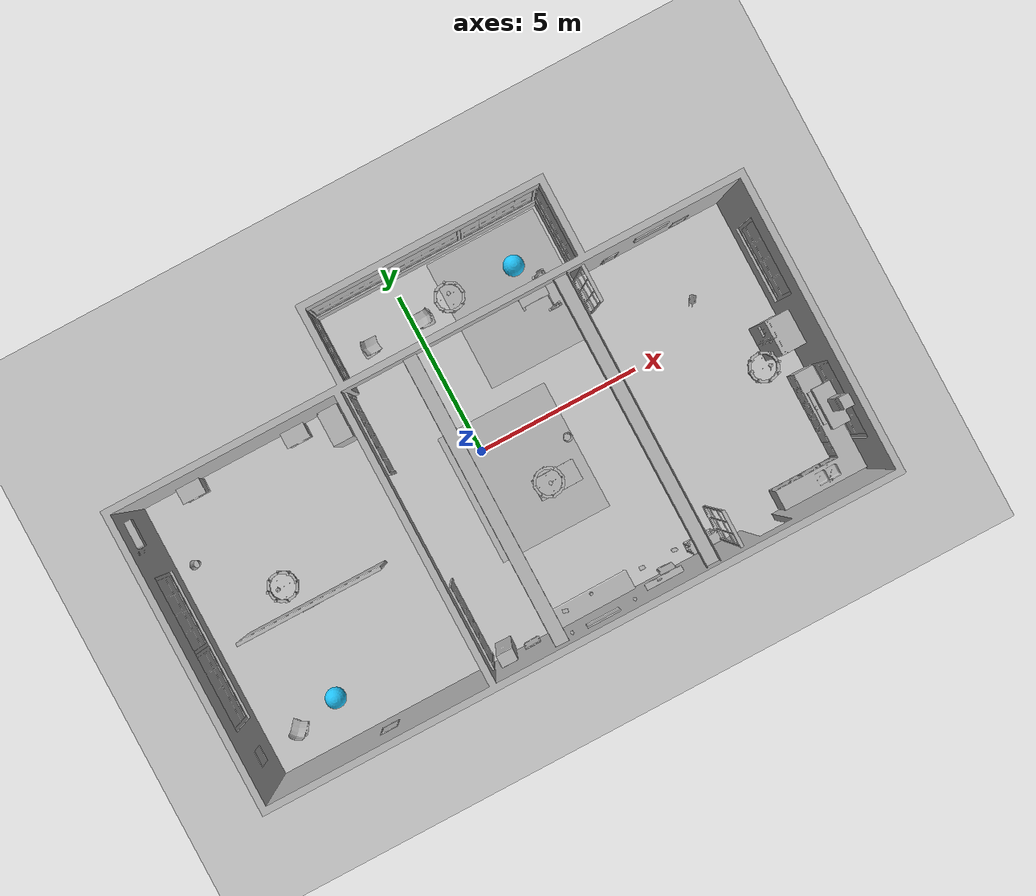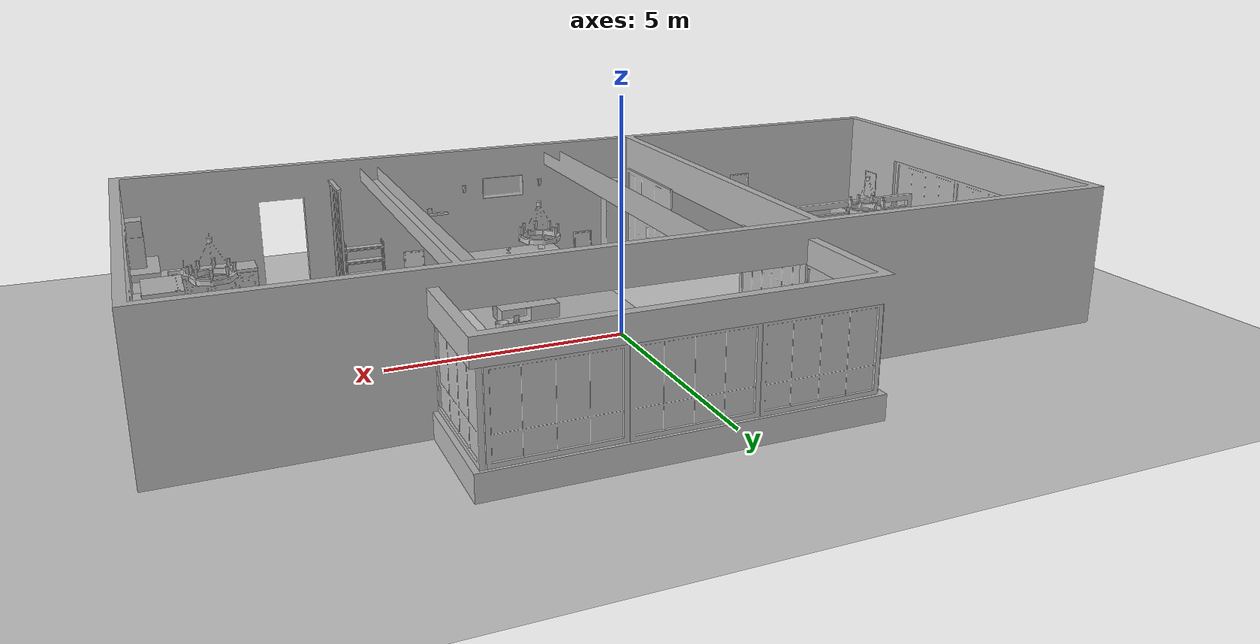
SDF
<sdf version="1.6">
 <world name="default">
  <gravity>0 0 -9.8</gravity>
  <magnetic_field>6e-06 2.3e-05 -4.2e-05</magnetic_field>
  <atmosphere type="adiabatic"/>
  <physics name="default_physics" default="0" type="ode">
   <max_step_size>0.001</max_step_size>
   <real_time_factor>1</real_time_factor>
   <real_time_update_rate>1000</real_time_update_rate>
  </physics>
  <scene>
   <ambient>0.4 0.4 0.4 1</ambient>
   <background>0.7 0.7 0.7 1</background>
   <shadows>false</shadows>
   <grid>0</grid>
   <origin_visual>0</origin_visual>
  </scene>
  <spherical_coordinates>
   <surface_model>EARTH_WGS84</surface_model>
   <latitude_deg>0</latitude_deg>
   <longitude_deg>0</longitude_deg>
   <elevation>0</elevation>
   <heading_deg>0</heading_deg>
  </spherical_coordinates>
  <model name="AirconditionerA_01_001">
   <link name="aws_robomaker_residential_AirconditionerA_01::link">
    <inertial><mass>1</mass></inertial>
    <collision name="collision">
     <geometry>
      <mesh>
       <uri>file://models/aws_robomaker_residential_AirconditionerA_01/meshes/aws_AirconditionerA_01_collision.DAE</uri>
       <scale>1 1 1</scale>
      </mesh>
     </geometry>
    </collision>
    <visual name="visual">
     <geometry>
      <mesh>
       <uri>file://models/aws_robomaker_residential_AirconditionerA_01/meshes/aws_AirconditionerA_01_visual.DAE</uri>
      </mesh>
     </geometry>
     <meta><layer>1</layer></meta>
    </visual>
   </link>
   <static>1</static>
   <pose>-9.19941 2.41123 2.08454 0 -0 0</pose>
  </model>
  <model name="AirconditionerB_01_001">
   <link name="aws_robomaker_residential_AirconditionerB_01::link">
    <inertial>
     <mass>1</mass>
     <inertia><ixx>1</ixx><ixy>0</ixy><ixz>0</ixz><iyy>1</iyy><iyz>0</iyz><izz>1</izz></inertia>
    </inertial>
    <collision name="collision">
     <geometry>
      <mesh>
       <uri>file://models/aws_robomaker_residential_AirconditionerB_01/meshes/aws_AirconditionerB_01_collision.DAE</uri>
       <scale>1 1 1</scale>
      </mesh>
     </geometry>
    </collision>
    <visual name="visual">
     <geometry>
      <mesh>
       <uri>file://models/aws_robomaker_residential_AirconditionerB_01/meshes/aws_AirconditionerB_01_visual.DAE</uri>
      </mesh>
     </geometry>
     <meta><layer>1</layer></meta>
    </visual>
   </link>
   <pose>-2.00466 -5.22661 0.003476 0 -1e-06 0</pose>
  </model>
  <model name="Ball_01_001">
   <link name="aws_robomaker_residential_Ball_01::link">
    <inertial>
     <mass>0.12</mass>
     <inertia>
      <ixx>0.030752</ixx>
      <ixy>0</ixy>
      <ixz>0</ixz>
      <iyy>0.030752</iyy>
      <iyz>0</iyz>
      <izz>0.030752</izz>
     </inertia>
    </inertial>
    <collision name="collision">
     <geometry><sphere><radius>0.31</radius></sphere></geometry>
     <surface>
      <friction><ode><mu>0.85</mu><mu2>0.85</mu2></ode></friction>
      <contact><ode><kd>8500</kd><max_vel>5.1</max_vel></ode></contact>
     </surface>
    </collision>
    <visual name="visual">
     <geometry><sphere><radius>0.31</radius></sphere></geometry>
     <material><diffuse>0.12 0.76 0.97 1</diffuse><ambient>0.03 0.21 0.27 1</ambient></material>
     <meta><layer>1</layer></meta>
    </visual>
   </link>
   <pose>3.2955 4.22567 0.31 0 -0 0</pose>
  </model>
  <model name="Ball_01_003">
   <link name="aws_robomaker_residential_Ball_01::link">
    <inertial>
     <mass>0.12</mass>
     <inertia>
      <ixx>0.030752</ixx>
      <ixy>0</ixy>
      <ixz>0</ixz>
      <iyy>0.030752</iyy>
      <iyz>0</iyz>
      <izz>0.030752</izz>
     </inertia>
    </inertial>
    <collision name="collision">
     <geometry><sphere><radius>0.31</radius></sphere></geometry>
     <surface>
      <friction><ode><mu>0.85</mu><mu2>0.85</mu2></ode></friction>
      <contact><ode><kd>8500</kd><max_vel>5.1</max_vel></ode></contact>
     </surface>
    </collision>
    <visual name="visual">
     <geometry><sphere><radius>0.31</radius></sphere></geometry>
     <material><diffuse>0.12 0.76 0.97 1</diffuse><ambient>0.03 0.21 0.27 1</ambient></material>
     <meta><layer>1</layer></meta>
    </visual>
   </link>
   <pose>-6.9455 -4.22174 0.31 0 -0 0</pose>
  </model>
  <model name="NightStand_01_001">
   <link name="aws_robomaker_residential_NightStand_01::link">
    <inertial>
     <mass>13.6</mass>
     <inertia><ixx>0.6165</ixx><ixy>0</ixy><ixz>0</ixz><iyy>1.29664</iyy><iyz>0</iyz><izz>0.7706</izz></inertia>
    </inertial>
    <collision name="collision">
     <geometry>
      <mesh>
       <uri>file://models/aws_robomaker_residential_NightStand_01/meshes/aws_NightStand_01_collision.DAE</uri>
       <scale>1 1 1</scale>
      </mesh>
     </geometry>
    </collision>
    <visual name="visual">
     <geometry>
      <mesh>
       <uri>file://models/aws_robomaker_residential_NightStand_01/meshes/aws_NightStand_01_visual.DAE</uri>
      </mesh>
     </geometry>
     <meta><layer>1</layer></meta>
    </visual>
   </link>
   <static>1</static>
   <pose>-7.72551 2.86042 0.005258 -2e-06 0 0</pose>
  </model>
  <model name="NightStand_01_002">
   <link name="aws_robomaker_residential_NightStand_01::link">
    <inertial>
     <mass>13.6</mass>
     <inertia><ixx>0.6165</ixx><ixy>0</ixy><ixz>0</ixz><iyy>1.29664</iyy><iyz>0</iyz><izz>0.7706</izz></inertia>
    </inertial>
    <collision name="collision">
     <geometry>
      <mesh>
       <uri>file://models/aws_robomaker_residential_NightStand_01/meshes/aws_NightStand_01_collision.DAE</uri>
       <scale>1 1 1</scale>
      </mesh>
     </geometry>
    </collision>
    <visual name="visual">
     <geometry>
      <mesh>
       <uri>file://models/aws_robomaker_residential_NightStand_01/meshes/aws_NightStand_01_visual.DAE</uri>
      </mesh>
     </geometry>
     <meta><layer>1</layer></meta>
    </visual>
   </link>
   <static>1</static>
   <pose>-4.40734 2.86042 0.005256 0 2e-06 0</pose>
  </model>
  <model name="Board_01_001">
   <link name="aws_robomaker_residential_Board_01::link">
    <inertial><mass>1</mass></inertial>
    <collision name="collision">
     <geometry>
      <mesh>
       <uri>file://models/aws_robomaker_residential_Board_01/meshes/aws_Board_01_collision.DAE</uri>
       <scale>1 1 1</scale>
      </mesh>
     </geometry>
    </collision>
    <visual name="visual">
     <geometry>
      <mesh><uri>file://models/aws_robomaker_residential_Board_01/meshes/aws_Board_01_visual.DAE</uri></mesh>
     </geometry>
     <meta><layer>2</layer></meta>
    </visual>
   </link>
   <static>1</static>
   <pose>2.77907 -5.3927 1.53817 0 -0 0</pose>
  </model>
  <model name="ChairD_01_001">
   <link name="aws_robomaker_residential_ChairD_01::link">
    <inertial>
     <mass>4.5</mass>
     <inertia><ixy>0</ixy><ixz>0</ixz><iyz>0</iyz><ixx>0.217</ixx><iyy>0.217</iyy><izz>0.067</izz></inertia>
    </inertial>
    <collision name="collision">
     <geometry>
      <mesh>
       <uri>file://models/aws_robomaker_residential_ChairD_01/meshes/aws_ChairD_01_collision.DAE</uri>
       <scale>1 1 1</scale>
      </mesh>
     </geometry>
    </collision>
    <visual name="visual">
     <geometry>
      <mesh><uri>file://models/aws_robomaker_residential_ChairD_01/meshes/aws_ChairD_01_visual.DAE</uri></mesh>
     </geometry>
     <meta><layer>1</layer></meta>
    </visual>
   </link>
   <pose>-1.38077 4.10446 -0.000251 8e-06 0.000975 -4e-06</pose>
  </model>
  <model name="ChairD_01_002">
   <link name="aws_robomaker_residential_ChairD_01::link">
    <inertial>
     <mass>4.5</mass>
     <inertia><ixy>0</ixy><ixz>0</ixz><iyz>0</iyz><ixx>0.217</ixx><iyy>0.217</iyy><izz>0.067</izz></inertia>
    </inertial>
    <collision name="collision">
     <geometry>
      <mesh>
       <uri>file://models/aws_robomaker_residential_ChairD_01/meshes/aws_ChairD_01_collision.DAE</uri>
       <scale>1 1 1</scale>
      </mesh>
     </geometry>
    </collision>
    <visual name="visual">
     <geometry>
      <mesh><uri>file://models/aws_robomaker_residential_ChairD_01/meshes/aws_ChairD_01_visual.DAE</uri></mesh>
     </geometry>
     <meta><layer>1</layer></meta>
    </visual>
   </link>
   <pose>0.325213 4.10445 -0.000249 0 0.000976 -3.13875</pose>
  </model>
  <model name="ChairD_01_003">
   <link name="aws_robomaker_residential_ChairD_01::link">
    <inertial>
     <mass>4.5</mass>
     <inertia><ixy>0</ixy><ixz>0</ixz><iyz>0</iyz><ixx>0.217</ixx><iyy>0.217</iyy><izz>0.067</izz></inertia>
    </inertial>
    <collision name="collision">
     <geometry>
      <mesh>
       <uri>file://models/aws_robomaker_residential_ChairD_01/meshes/aws_ChairD_01_collision.DAE</uri>
       <scale>1 1 1</scale>
      </mesh>
     </geometry>
    </collision>
    <visual name="visual">
     <geometry>
      <mesh><uri>file://models/aws_robomaker_residential_ChairD_01/meshes/aws_ChairD_01_visual.DAE</uri></mesh>
     </geometry>
     <meta><layer>1</layer></meta>
    </visual>
   </link>
   <pose>-8.27078 -4.50446 -0.000251 8e-06 0.000975 0.869669</pose>
  </model>
  <model name="Chandelier_01_001">
   <link name="aws_robomaker_residential_Chandelier_01::link">
    <inertial><mass>1</mass></inertial>
    <collision name="collision">
     <geometry>
      <mesh>
       <uri>file://models/aws_robomaker_residential_Chandelier_01/meshes/aws_Chandelier_01_collision.DAE</uri>
       <scale>1 1 1</scale>
      </mesh>
     </geometry>
    </collision>
    <visual name="visual">
     <geometry>
      <mesh>
       <uri>file://models/aws_robomaker_residential_Chandelier_01/meshes/aws_Chandelier_01_visual.DAE</uri>
      </mesh>
     </geometry>
     <meta><layer>2</layer></meta>
    </visual>
   </link>
   <static>1</static>
   <pose>1.22106 4.15574 1.295 0 -0 0</pose>
  </model>
  <model name="Chandelier_01_002">
   <link name="aws_robomaker_residential_Chandelier_01::link">
    <inertial><mass>1</mass></inertial>
    <collision name="collision">
     <geometry>
      <mesh>
       <uri>file://models/aws_robomaker_residential_Chandelier_01/meshes/aws_Chandelier_01_collision.DAE</uri>
       <scale>1 1 1</scale>
      </mesh>
     </geometry>
    </collision>
    <visual name="visual">
     <geometry>
      <mesh>
       <uri>file://models/aws_robomaker_residential_Chandelier_01/meshes/aws_Chandelier_01_visual.DAE</uri>
      </mesh>
     </geometry>
     <meta><layer>2</layer></meta>
    </visual>
   </link>
   <static>1</static>
   <pose>-6.45106 -0.69204 1.81 0 -0 0</pose>
  </model>
  <model name="Chandelier_01_003">
   <link name="aws_robomaker_residential_Chandelier_01::link">
    <inertial><mass>1</mass></inertial>
    <collision name="collision">
     <geometry>
      <mesh>
       <uri>file://models/aws_robomaker_residential_Chandelier_01/meshes/aws_Chandelier_01_collision.DAE</uri>
       <scale>1 1 1</scale>
      </mesh>
     </geometry>
    </collision>
    <visual name="visual">
     <geometry>
      <mesh>
       <uri>file://models/aws_robomaker_residential_Chandelier_01/meshes/aws_Chandelier_01_visual.DAE</uri>
      </mesh>
     </geometry>
     <meta><layer>2</layer></meta>
    </visual>
   </link>
   <static>1</static>
   <pose>7.82406 -1.59 1.751 0 -0 0</pose>
  </model>
  <model name="Chandelier_01_004">
   <link name="aws_robomaker_residential_Chandelier_01::link">
    <inertial><mass>1</mass></inertial>
    <collision name="collision">
     <geometry>
      <mesh>
       <uri>file://models/aws_robomaker_residential_Chandelier_01/meshes/aws_Chandelier_01_collision.DAE</uri>
       <scale>1 1 1</scale>
      </mesh>
     </geometry>
    </collision>
    <visual name="visual">
     <geometry>
      <mesh>
       <uri>file://models/aws_robomaker_residential_Chandelier_01/meshes/aws_Chandelier_01_visual.DAE</uri>
      </mesh>
     </geometry>
     <meta><layer>2</layer></meta>
    </visual>
   </link>
   <static>1</static>
   <pose>1.22106 -1.59204 1.7873 0 -0 0</pose>
  </model>
  <model name="Carpet_01_001">
   <link name="aws_robomaker_residential_Carpet_01::link">
    <inertial><mass>8.1</mass></inertial>
    <collision name="collision">
     <geometry>
      <mesh>
       <uri>file://models/aws_robomaker_residential_Carpet_01/meshes/aws_Carpet_01_collision.DAE</uri>
       <scale>1 1 0.95</scale>
      </mesh>
     </geometry>
     <pose>0 0 -0.01 0 -0 0</pose>
    </collision>
    <visual name="visual">
     <geometry>
      <mesh><uri>file://models/aws_robomaker_residential_Carpet_01/meshes/aws_Carpet_01_visual.DAE</uri></mesh>
     </geometry>
     <meta><layer>1</layer></meta>
    </visual>
   </link>
   <static>1</static>
   <pose>0.78505 -1.10665 0.001106 0 -0 0</pose>
  </model>
  <model name="Carpet_01_002">
   <link name="aws_robomaker_residential_Carpet_01::link">
    <inertial><mass>8.1</mass></inertial>
    <collision name="collision">
     <geometry>
      <mesh>
       <uri>file://models/aws_robomaker_residential_Carpet_01/meshes/aws_Carpet_01_collision.DAE</uri>
       <scale>1 1 0.95</scale>
      </mesh>
     </geometry>
     <pose>0 0 -0.01 0 -0 0</pose>
    </collision>
    <visual name="visual">
     <geometry>
      <mesh><uri>file://models/aws_robomaker_residential_Carpet_01/meshes/aws_Carpet_01_visual.DAE</uri></mesh>
     </geometry>
     <meta><layer>1</layer></meta>
    </visual>
   </link>
   <static>1</static>
   <pose>2.85405 3.45 0.000585 0 -0 0</pose>
  </model>
  <model name="SecurityCamera_01_001">
   <link name="aws_robomaker_residential_SecurityCamera_01::link">
    <inertial>
     <mass>1</mass>
     <inertia>
      <ixx>18.2222</ixx>
      <ixy>0</ixy>
      <ixz>0</ixz>
      <iyy>18.2222</iyy>
      <iyz>0</iyz>
      <izz>0.0018767</izz>
     </inertia>
    </inertial>
    <collision name="collision">
     <geometry>
      <mesh>
       <uri>file://models/aws_robomaker_residential_SecurityCamera_01/meshes/aws_SecurityCamera_01_collision.DAE</uri>
       <scale>1 1 1</scale>
      </mesh>
     </geometry>
    </collision>
    <visual name="visual">
     <geometry>
      <mesh>
       <uri>file://models/aws_robomaker_residential_SecurityCamera_01/meshes/aws_SecurityCamera_01_visual.DAE</uri>
      </mesh>
     </geometry>
     <meta><layer>2</layer></meta>
    </visual>
   </link>
   <pose>0.842134 -4.99629 0.492555 1e-06 -3e-06 -2.84104</pose>
  </model>
  <model name="CoffeeTable_01_001">
   <link name="aws_robomaker_residential_CoffeeTable_01::link">
    <inertial>
     <mass>21.7</mass>
     <inertia><ixx>0.81375</ixx><ixy>0</ixy><ixz>0</ixz><iyy>2.76675</iyy><iyz>0</iyz><izz>3.254</izz></inertia>
    </inertial>
    <collision name="collision">
     <geometry>
      <mesh>
       <uri>file://models/aws_robomaker_residential_CoffeeTable_01/meshes/aws_CoffeeTable_01_collision.DAE</uri>
       <scale>1 1 1</scale>
      </mesh>
     </geometry>
     <surface><contact><ode><max_vel>0.01</max_vel></ode></contact></surface>
    </collision>
    <visual name="visual">
     <geometry>
      <mesh>
       <uri>file://models/aws_robomaker_residential_CoffeeTable_01/meshes/aws_CoffeeTable_01_visual.DAE</uri>
      </mesh>
     </geometry>
     <meta><layer>1</layer></meta>
    </visual>
   </link>
   <static>1</static>
   <pose>1.5123 -1.73344 0.041983 0 -0 0.01</pose>
  </model>
  <model name="CookingBench_01_001">
   <link name="aws_robomaker_residential_CookingBench_01::link">
    <inertial><mass>1</mass></inertial>
    <collision name="collision">
     <geometry>
      <mesh>
       <uri>file://models/aws_robomaker_residential_CookingBench_01/meshes/aws_CookingBench_01_collision.DAE</uri>
       <scale>1 1 1</scale>
      </mesh>
     </geometry>
    </collision>
    <visual name="visual">
     <geometry>
      <mesh>
       <uri>file://models/aws_robomaker_residential_CookingBench_01/meshes/aws_CookingBench_01_visual.DAE</uri>
      </mesh>
     </geometry>
     <meta><layer>1</layer></meta>
    </visual>
   </link>
   <pose>9.03838 -3.35114 0.90361 0 -0 3.13713</pose>
   <static>1</static>
  </model>
  <model name="FitnessEquipment_01_001">
   <link name="aws_robomaker_residential_FitnessEquipment_01::link">
    <inertial><mass>80</mass></inertial>
    <collision name="collision">
     <geometry>
      <mesh>
       <uri>file://models/aws_robomaker_residential_FitnessEquipment_01/meshes/aws_FitnessEquipment_01_collision.DAE</uri>
       <scale>1 1 1</scale>
      </mesh>
     </geometry>
    </collision>
    <visual name="visual">
     <geometry>
      <mesh>
       <uri>file://models/aws_robomaker_residential_FitnessEquipment_01/meshes/aws_FitnessEquipment_01_visual.DAE</uri>
      </mesh>
     </geometry>
     <meta><layer>1</layer></meta>
    </visual>
   </link>
   <static>1</static>
   <pose>3.48472 3.1691 0.003168 0 -0 0</pose>
  </model>
  <model name="FoldingDoor_01_001">
   <link name="aws_robomaker_residential_FoldingDoor_01::link">
    <inertial><mass>1</mass></inertial>
    <collision name="collision">
     <geometry>
      <mesh>
       <uri>file://models/aws_robomaker_residential_FoldingDoor_01/meshes/aws_FoldingDoor_01_collision.DAE</uri>
       <scale>1 1 1</scale>
      </mesh>
     </geometry>
    </collision>
    <visual name="visual">
     <geometry>
      <mesh>
       <uri>file://models/aws_robomaker_residential_FoldingDoor_01/meshes/aws_FoldingDoor_01_visual.DAE</uri>
      </mesh>
     </geometry>
     <meta><layer>2</layer></meta>
    </visual>
   </link>
   <static>1</static>
   <pose>-2.4611 1.84422 0.041881 0 -0 0</pose>
  </model>
  <model name="FoldingDoor_01_002">
   <link name="aws_robomaker_residential_FoldingDoor_01::link">
    <inertial><mass>1</mass></inertial>
    <collision name="collision">
     <geometry>
      <mesh>
       <uri>file://models/aws_robomaker_residential_FoldingDoor_01/meshes/aws_FoldingDoor_01_collision.DAE</uri>
       <scale>1 1 1</scale>
      </mesh>
     </geometry>
    </collision>
    <visual name="visual">
     <geometry>
      <mesh>
       <uri>file://models/aws_robomaker_residential_FoldingDoor_01/meshes/aws_FoldingDoor_01_visual.DAE</uri>
      </mesh>
     </geometry>
     <meta><layer>2</layer></meta>
    </visual>
   </link>
   <static>1</static>
   <pose>-2.4611 -4.05332 0.041881 0 -0 0</pose>
  </model>
  <model name="HouseWallB_01_001">
   <link name="aws_robomaker_residential_HouseWallB_01::link">
    <inertial><mass>1</mass></inertial>
    <collision name="collision">
     <geometry>
      <mesh>
       <uri>file://models/aws_robomaker_residential_HouseWallB_01/meshes/aws_HouseWallB_01_collision.DAE</uri>
       <scale>1 1 1</scale>
      </mesh>
     </geometry>
    </collision>
    <visual name="visual">
     <geometry>
      <mesh>
       <uri>file://models/aws_robomaker_residential_HouseWallB_01/meshes/aws_HouseWallB_01_visual.DAE</uri>
      </mesh>
     </geometry>
     <meta><layer>2</layer></meta>
    </visual>
   </link>
   <static>1</static>
  </model>
  <model name="FoldingDoor_02_001">
   <link name="aws_robomaker_residential_FoldingDoor_02::link">
    <inertial><mass>1</mass></inertial>
    <collision name="collision">
     <geometry>
      <mesh>
       <uri>file://models/aws_robomaker_residential_FoldingDoor_02/meshes/aws_FoldingDoor_02_collision.DAE</uri>
       <scale>1 1 1</scale>
      </mesh>
     </geometry>
    </collision>
    <visual name="visual">
     <geometry>
      <mesh>
       <uri>file://models/aws_robomaker_residential_FoldingDoor_02/meshes/aws_FoldingDoor_02_visual.DAE</uri>
      </mesh>
     </geometry>
     <meta><layer>2</layer></meta>
    </visual>
   </link>
   <static>1</static>
   <pose>4.67423 2.46451 0 0 -0 3.14159</pose>
  </model>
  <model name="FoldingDoor_02_002">
   <link name="aws_robomaker_residential_FoldingDoor_02::link">
    <inertial><mass>1</mass></inertial>
    <collision name="collision">
     <geometry>
      <mesh>
       <uri>file://models/aws_robomaker_residential_FoldingDoor_02/meshes/aws_FoldingDoor_02_collision.DAE</uri>
       <scale>1 1 1</scale>
      </mesh>
     </geometry>
    </collision>
    <visual name="visual">
     <geometry>
      <mesh>
       <uri>file://models/aws_robomaker_residential_FoldingDoor_02/meshes/aws_FoldingDoor_02_visual.DAE</uri>
      </mesh>
     </geometry>
     <meta><layer>2</layer></meta>
    </visual>
   </link>
   <static>1</static>
   <pose>4.8912 -4.84968 0 0 -0 0</pose>
  </model>
  <model name="KitchenCabinet_01_001">
   <link name="aws_robomaker_residential_KitchenCabinet_01::link">
    <inertial><mass>1</mass></inertial>
    <collision name="collision">
     <geometry>
      <mesh>
       <uri>file://models/aws_robomaker_residential_KitchenCabinet_01/meshes/aws_KitchenCabinet_01_collision.DAE</uri>
       <scale>1 1 1</scale>
      </mesh>
     </geometry>
    </collision>
    <visual name="visual">
     <geometry>
      <mesh>
       <uri>file://models/aws_robomaker_residential_KitchenCabinet_01/meshes/aws_KitchenCabinet_01_visual.DAE</uri>
      </mesh>
     </geometry>
     <meta><layer>1</layer></meta>
    </visual>
   </link>
   <static>1</static>
   <pose>8.00201 -3.83651 0.012068 0 0 -3.14</pose>
  </model>
  <model name="LightC_01_001">
   <link name="aws_robomaker_residential_LightC_01::link">
    <inertial><mass>1</mass></inertial>
    <collision name="collision">
     <geometry>
      <mesh>
       <uri>file://models/aws_robomaker_residential_LightC_01/meshes/aws_LightC_01_collision.DAE</uri>
       <scale>1 1 1</scale>
      </mesh>
     </geometry>
    </collision>
    <visual name="visual">
     <geometry>
      <mesh><uri>file://models/aws_robomaker_residential_LightC_01/meshes/aws_LightC_01_visual.DAE</uri></mesh>
     </geometry>
     <meta><layer>2</layer></meta>
    </visual>
   </link>
   <static>1</static>
   <pose>1.76957 -5.44437 2 0 -0 0</pose>
  </model>
  <model name="LightC_01_002">
   <link name="aws_robomaker_residential_LightC_01::link">
    <inertial><mass>1</mass></inertial>
    <collision name="collision">
     <geometry>
      <mesh>
       <uri>file://models/aws_robomaker_residential_LightC_01/meshes/aws_LightC_01_collision.DAE</uri>
       <scale>1 1 1</scale>
      </mesh>
     </geometry>
    </collision>
    <visual name="visual">
     <geometry>
      <mesh><uri>file://models/aws_robomaker_residential_LightC_01/meshes/aws_LightC_01_visual.DAE</uri></mesh>
     </geometry>
     <meta><layer>2</layer></meta>
    </visual>
   </link>
   <static>1</static>
   <pose>-0.138245 -5.44437 2 0 -0 0</pose>
  </model>
  <model name="PortraitA_01">
   <link name="aws_robomaker_residential_PortraitA_01::link">
    <inertial><mass>1</mass></inertial>
    <collision name="collision">
     <geometry>
      <mesh>
       <uri>file://models/aws_robomaker_residential_PortraitA_01/meshes/aws_PortraitA_01_collision.DAE</uri>
       <scale>1 1 1</scale>
      </mesh>
     </geometry>
    </collision>
    <visual name="visual">
     <geometry>
      <mesh>
       <uri>file://models/aws_robomaker_residential_PortraitA_01/meshes/aws_PortraitA_01_visual.DAE</uri>
      </mesh>
     </geometry>
     <meta><layer>2</layer></meta>
    </visual>
   </link>
   <static>1</static>
   <pose>-2.71236 -4.81754 1 0 -0 1.5668</pose>
  </model>
  <model name="PortraitB_01">
   <link name="aws_robomaker_residential_PortraitB_01::link">
    <inertial><mass>1</mass></inertial>
    <collision name="collision">
     <geometry>
      <mesh>
       <uri>file://models/aws_robomaker_residential_PortraitB_01/meshes/aws_PortraitB_01_collision.DAE</uri>
       <scale>1 1 1</scale>
      </mesh>
     </geometry>
    </collision>
    <visual name="visual">
     <geometry>
      <mesh>
       <uri>file://models/aws_robomaker_residential_PortraitB_01/meshes/aws_PortraitB_01_visual.DAE</uri>
      </mesh>
     </geometry>
     <meta><layer>2</layer></meta>
    </visual>
   </link>
   <static>1</static>
   <pose>-1.27968 -5.42963 0 -0.076901 0 -3.11672</pose>
  </model>
  <model name="PortraitB_02">
   <link name="aws_robomaker_residential_PortraitB_02::link">
    <inertial><mass>1</mass></inertial>
    <collision name="collision">
     <geometry>
      <mesh>
       <uri>file://models/aws_robomaker_residential_PortraitB_02/meshes/aws_PortraitB_01_collision.DAE</uri>
       <scale>1 1 1</scale>
      </mesh>
     </geometry>
    </collision>
    <visual name="visual">
     <geometry>
      <mesh>
       <uri>file://models/aws_robomaker_residential_PortraitB_02/meshes/aws_PortraitB_01_visual.DAE</uri>
      </mesh>
     </geometry>
     <meta><layer>2</layer></meta>
    </visual>
   </link>
   <static>1</static>
   <pose>5.73702 3.08031 0.3 0 -0 0</pose>
  </model>
  <model name="PortraitB_03">
   <link name="aws_robomaker_residential_PortraitB_03::link">
    <inertial><mass>1</mass></inertial>
    <collision name="collision">
     <geometry>
      <mesh>
       <uri>file://models/aws_robomaker_residential_PortraitB_03/meshes/aws_PortraitB_01_collision.DAE</uri>
       <scale>1 1 1</scale>
      </mesh>
     </geometry>
    </collision>
    <visual name="visual">
     <geometry>
      <mesh>
       <uri>file://models/aws_robomaker_residential_PortraitB_03/meshes/aws_PortraitB_01_visual.DAE</uri>
      </mesh>
     </geometry>
     <meta><layer>2</layer></meta>
    </visual>
   </link>
   <static>1</static>
   <pose>3.07138 -5.34937 0.005494 -0.168428 -0 3.10423</pose>
  </model>
  <model name="PortraitA_02">
   <link name="aws_robomaker_residential_PortraitA_02::link">
    <inertial><mass>1</mass></inertial>
    <collision name="collision">
     <geometry>
      <mesh>
       <uri>file://models/aws_robomaker_residential_PortraitA_02/meshes/aws_PortraitA_01_collision.DAE</uri>
       <scale>1 1 1</scale>
      </mesh>
     </geometry>
    </collision>
    <visual name="visual">
     <geometry>
      <mesh>
       <uri>file://models/aws_robomaker_residential_PortraitA_02/meshes/aws_PortraitA_01_visual.DAE</uri>
      </mesh>
     </geometry>
     <meta><layer>2</layer></meta>
    </visual>
   </link>
   <static>1</static>
   <pose>7.93702 3.08031 0.3 0 -0 3.14</pose>
  </model>
  <model name="PortraitC_01">
   <link name="aws_robomaker_residential_PortraitC_01::link">
    <inertial><mass>1</mass></inertial>
    <collision name="collision">
     <geometry>
      <mesh>
       <uri>file://models/aws_robomaker_residential_PortraitC_01/meshes/aws_PortraitC_01_collision.DAE</uri>
       <scale>1 1 1</scale>
      </mesh>
     </geometry>
    </collision>
    <visual name="visual">
     <geometry>
      <mesh>
       <uri>file://models/aws_robomaker_residential_PortraitC_01/meshes/aws_PortraitC_01_visual.DAE</uri>
      </mesh>
     </geometry>
     <meta><layer>2</layer></meta>
    </visual>
   </link>
   <static>1</static>
   <pose>-9.2949 -4.52608 1 0 -0 1.55473</pose>
  </model>
  <model name="PortraitD_01">
   <link name="aws_robomaker_residential_PortraitD_01::link">
    <inertial><mass>1.5</mass></inertial>
    <collision name="collision">
     <geometry>
      <mesh>
       <uri>file://models/aws_robomaker_residential_PortraitD_01/meshes/aws_PortraitD_01_collision.DAE</uri>
       <scale>1 1 1</scale>
      </mesh>
     </geometry>
    </collision>
    <visual name="visual">
     <geometry>
      <mesh>
       <uri>file://models/aws_robomaker_residential_PortraitD_01/meshes/aws_PortraitD_01_visual.DAE</uri>
      </mesh>
     </geometry>
     <meta><layer>2</layer></meta>
    </visual>
   </link>
   <static>1</static>
   <pose>0.789763 -5.47872 1.8 0 -0 3.13853</pose>
  </model>
  <model name="PortraitD_02">
   <link name="aws_robomaker_residential_PortraitD_02::link">
    <inertial><mass>1.5</mass></inertial>
    <collision name="collision">
     <geometry>
      <mesh>
       <uri>file://models/aws_robomaker_residential_PortraitD_02/meshes/aws_PortraitD_01_collision.DAE</uri>
       <scale>1 1 1</scale>
      </mesh>
     </geometry>
    </collision>
    <visual name="visual">
     <geometry>
      <mesh>
       <uri>file://models/aws_robomaker_residential_PortraitD_02/meshes/aws_PortraitD_01_visual.DAE</uri>
      </mesh>
     </geometry>
     <meta><layer>2</layer></meta>
    </visual>
   </link>
   <static>1</static>
   <pose>6.87018 3.08031 1.48844 0 -0 0</pose>
  </model>
  <model name="PortraitE_01">
   <link name="aws_robomaker_residential_PortraitE_01::link">
    <inertial><mass>1</mass></inertial>
    <collision name="collision">
     <geometry>
      <mesh>
       <uri>file://models/aws_robomaker_residential_PortraitE_01/meshes/aws_PortraitE_01_collision.DAE</uri>
       <scale>1 1 1</scale>
      </mesh>
     </geometry>
    </collision>
    <visual name="visual">
     <geometry>
      <mesh>
       <uri>file://models/aws_robomaker_residential_PortraitE_01/meshes/aws_PortraitE_01_visual.DAE</uri>
      </mesh>
     </geometry>
     <meta><layer>2</layer></meta>
    </visual>
   </link>
   <static>1</static>
   <pose>-5.77309 -5.49247 1 0 -0 3.13263</pose>
  </model>
  <model name="PortraitE_02">
   <link name="aws_robomaker_residential_PortraitE_02::link">
    <inertial><mass>1</mass></inertial>
    <collision name="collision">
     <geometry>
      <mesh>
       <uri>file://models/aws_robomaker_residential_PortraitE_02/meshes/aws_PortraitE_01_collision.DAE</uri>
       <scale>1 1 1</scale>
      </mesh>
     </geometry>
    </collision>
    <visual name="visual">
     <geometry>
      <mesh>
       <uri>file://models/aws_robomaker_residential_PortraitE_02/meshes/aws_PortraitE_01_visual.DAE</uri>
      </mesh>
     </geometry>
     <meta><layer>2</layer></meta>
    </visual>
   </link>
   <static>1</static>
   <pose>-6.19302 -1.59021 0.3 0 -0 0.00429</pose>
  </model>
  <model name="DeskPortraitA_01">
   <link name="aws_robomaker_residential_DeskPortraitA_01::link">
    <inertial>
     <mass>1</mass>
     <inertia><ixx>0.0835</ixx><ixy>0</ixy><ixz>0</ixz><iyy>0.16</iyy><iyz>0</iyz><izz>0.08347</izz></inertia>
    </inertial>
    <collision name="collision">
     <geometry>
      <mesh>
       <uri>file://models/aws_robomaker_residential_DeskPortraitA_01/meshes/aws_DeskPortraitA_01_collision.DAE</uri>
       <scale>1 1 1</scale>
      </mesh>
     </geometry>
    </collision>
    <visual name="visual">
     <geometry>
      <mesh>
       <uri>file://models/aws_robomaker_residential_DeskPortraitA_01/meshes/aws_DeskPortraitA_01_visual.DAE</uri>
      </mesh>
     </geometry>
     <meta><layer>1</layer></meta>
    </visual>
   </link>
   <pose>-0.036864 -5.11016 0.492603 -0.000543 -0 2.92778</pose>
  </model>
  <model name="DeskPortraitA_02">
   <link name="aws_robomaker_residential_DeskPortraitA_02::link">
    <inertial>
     <mass>1</mass>
     <inertia><ixx>0.0835</ixx><ixy>0</ixy><ixz>0</ixz><iyy>0.16</iyy><iyz>0</iyz><izz>0.08347</izz></inertia>
    </inertial>
    <collision name="collision">
     <geometry>
      <mesh>
       <uri>file://models/aws_robomaker_residential_DeskPortraitA_02/meshes/aws_DeskPortraitA_01_collision.DAE</uri>
       <scale>1 1 1</scale>
      </mesh>
     </geometry>
    </collision>
    <visual name="visual">
     <geometry>
      <mesh>
       <uri>file://models/aws_robomaker_residential_DeskPortraitA_02/meshes/aws_DeskPortraitA_01_visual.DAE</uri>
      </mesh>
     </geometry>
     <meta><layer>1</layer></meta>
    </visual>
   </link>
   <pose>2.04609 -1.89292 0.065165 -0.000543 -0 1.57625</pose>
  </model>
  <model name="DeskPortraitD_01">
   <link name="aws_robomaker_residential_DeskPortraitD_01::link">
    <inertial>
     <mass>0.4</mass>
     <inertia><ixx>0.0616</ixx><ixy>0</ixy><ixz>0</ixz><iyy>0.1313</iyy><iyz>0</iyz><izz>0.0803</izz></inertia>
    </inertial>
    <collision name="collision">
     <geometry>
      <mesh>
       <uri>file://models/aws_robomaker_residential_DeskPortraitD_01/meshes/aws_DeskPortraitD_01_collision.DAE</uri>
       <scale>1 1 1</scale>
      </mesh>
     </geometry>
     <surface>
      <friction><ode><mu>0.7</mu><mu2>0.7</mu2></ode></friction>
      <contact><ode><kd>28500</kd></ode></contact>
     </surface>
    </collision>
    <visual name="visual">
     <geometry>
      <mesh>
       <uri>file://models/aws_robomaker_residential_DeskPortraitD_01/meshes/aws_DeskPortraitD_01_visual.DAE</uri>
      </mesh>
     </geometry>
     <meta><layer>1</layer></meta>
    </visual>
   </link>
   <pose>2.64556 -5.37622 1.57417 1e-06 1e-06 -3.11283</pose>
  </model>
  <model name="DeskPortraitD_02">
   <link name="aws_robomaker_residential_DeskPortraitD_02::link">
    <inertial>
     <mass>0.4</mass>
     <inertia><ixx>0.0616</ixx><ixy>0</ixy><ixz>0</ixz><iyy>0.1313</iyy><iyz>0</iyz><izz>0.0803</izz></inertia>
    </inertial>
    <collision name="collision">
     <geometry>
      <mesh>
       <uri>file://models/aws_robomaker_residential_DeskPortraitD_02/meshes/aws_DeskPortraitD_01_collision.DAE</uri>
       <scale>1 1 1</scale>
      </mesh>
     </geometry>
     <surface>
      <friction><ode><mu>0.7</mu><mu2>0.7</mu2></ode></friction>
      <contact><ode><kd>28500</kd></ode></contact>
     </surface>
    </collision>
    <visual name="visual">
     <geometry>
      <mesh>
       <uri>file://models/aws_robomaker_residential_DeskPortraitD_02/meshes/aws_DeskPortraitD_01_visual.DAE</uri>
      </mesh>
     </geometry>
     <meta><layer>1</layer></meta>
    </visual>
   </link>
   <pose>-0.589211 -5.10989 0.192372 3e-06 -1e-06 -3.11254</pose>
  </model>
  <model name="DeskPortraitD_03">
   <link name="aws_robomaker_residential_DeskPortraitD_03::link">
    <inertial>
     <mass>0.4</mass>
     <inertia><ixx>0.0616</ixx><ixy>0</ixy><ixz>0</ixz><iyy>0.1313</iyy><iyz>0</iyz><izz>0.0803</izz></inertia>
    </inertial>
    <collision name="collision">
     <geometry>
      <mesh>
       <uri>file://models/aws_robomaker_residential_DeskPortraitD_03/meshes/aws_DeskPortraitD_01_collision.DAE</uri>
       <scale>1 1 1</scale>
      </mesh>
     </geometry>
     <surface>
      <friction><ode><mu>0.7</mu><mu2>0.7</mu2></ode></friction>
      <contact><ode><kd>28500</kd></ode></contact>
     </surface>
    </collision>
    <visual name="visual">
     <geometry>
      <mesh>
       <uri>file://models/aws_robomaker_residential_DeskPortraitD_03/meshes/aws_DeskPortraitD_01_visual.DAE</uri>
      </mesh>
     </geometry>
     <meta><layer>1</layer></meta>
    </visual>
   </link>
   <pose>1.82673 -1.46488 0.064785 6e-06 1e-06 -3.11438</pose>
  </model>
  <model name="DeskPortraitD_04">
   <link name="aws_robomaker_residential_DeskPortraitD_04::link">
    <inertial>
     <mass>0.4</mass>
     <inertia><ixx>0.0616</ixx><ixy>0</ixy><ixz>0</ixz><iyy>0.1313</iyy><iyz>0</iyz><izz>0.0803</izz></inertia>
    </inertial>
    <collision name="collision">
     <geometry>
      <mesh>
       <uri>file://models/aws_robomaker_residential_DeskPortraitD_04/meshes/aws_DeskPortraitD_01_collision.DAE</uri>
       <scale>1 1 1</scale>
      </mesh>
     </geometry>
     <surface>
      <friction><ode><mu>0.7</mu><mu2>0.7</mu2></ode></friction>
      <contact><ode><kd>28500</kd></ode></contact>
     </surface>
    </collision>
    <visual name="visual">
     <geometry>
      <mesh>
       <uri>file://models/aws_robomaker_residential_DeskPortraitD_04/meshes/aws_DeskPortraitD_01_visual.DAE</uri>
      </mesh>
     </geometry>
     <meta><layer>1</layer></meta>
    </visual>
   </link>
   <pose>4.24847 -5.18691 0.083457 -0.00014 6e-06 1.79926</pose>
  </model>
  <model name="DeskPortraitB_01">
   <link name="aws_robomaker_residential_DeskPortraitB_01::link">
    <inertial>
     <mass>1</mass>
     <inertia><ixx>0.0135</ixx><ixy>0</ixy><ixz>0</ixz><iyy>0.02</iyy><iyz>0</iyz><izz>0.01347</izz></inertia>
    </inertial>
    <collision name="collision">
     <geometry>
      <mesh>
       <uri>file://models/aws_robomaker_residential_DeskPortraitB_01/meshes/aws_DeskPortraitB_01_collision.DAE</uri>
       <scale>1 1 1</scale>
      </mesh>
     </geometry>
    </collision>
    <visual name="visual">
     <geometry>
      <mesh>
       <uri>file://models/aws_robomaker_residential_DeskPortraitB_01/meshes/aws_DeskPortraitB_01_visual.DAE</uri>
      </mesh>
     </geometry>
     <meta><layer>1</layer></meta>
    </visual>
   </link>
   <pose>3.54715 -5.08607 -0.01266 -0.336622 -0 3.04626</pose>
  </model>
  <model name="DeskPortraitB_02">
   <link name="aws_robomaker_residential_DeskPortraitB_02::link">
    <inertial>
     <mass>1</mass>
     <inertia><ixx>0.0135</ixx><ixy>0</ixy><ixz>0</ixz><iyy>0.02</iyy><iyz>0</iyz><izz>0.01347</izz></inertia>
    </inertial>
    <collision name="collision">
     <geometry>
      <mesh>
       <uri>file://models/aws_robomaker_residential_DeskPortraitB_02/meshes/aws_DeskPortraitB_01_collision.DAE</uri>
       <scale>1 1 1</scale>
      </mesh>
     </geometry>
    </collision>
    <visual name="visual">
     <geometry>
      <mesh>
       <uri>file://models/aws_robomaker_residential_DeskPortraitB_02/meshes/aws_DeskPortraitB_01_visual.DAE</uri>
      </mesh>
     </geometry>
     <meta><layer>1</layer></meta>
    </visual>
   </link>
   <pose>2.48623 -5.10271 -0.012661 -0.336637 8e-06 3.04621</pose>
  </model>
  <model name="Rangehood_01_001">
   <link name="aws_robomaker_residential_Rangehood_01::link">
    <inertial><mass>1</mass></inertial>
    <collision name="collision">
     <geometry>
      <mesh>
       <uri>file://models/aws_robomaker_residential_Rangehood_01/meshes/aws_Rangehood_01_collision.DAE</uri>
       <scale>1 1 1</scale>
      </mesh>
     </geometry>
    </collision>
    <visual name="visual">
     <geometry>
      <mesh>
       <uri>file://models/aws_robomaker_residential_Rangehood_01/meshes/aws_Rangehood_01_visual.DAE</uri>
      </mesh>
     </geometry>
     <meta><layer>2</layer></meta>
    </visual>
   </link>
   <static>1</static>
   <pose>9.01979 -3.36994 1.50761 0 -0 0</pose>
  </model>
  <model name="Refrigerator_01_001">
   <link name="aws_robomaker_residential_Refrigerator_01::link">
    <inertial><mass>1</mass></inertial>
    <collision name="collision">
     <geometry>
      <mesh>
       <uri>file://models/aws_robomaker_residential_Refrigerator_01/meshes/aws_Refrigerator_01_collision.DAE</uri>
       <scale>1 1 1</scale>
      </mesh>
     </geometry>
    </collision>
    <visual name="visual">
     <geometry>
      <mesh>
       <uri>file://models/aws_robomaker_residential_Refrigerator_01/meshes/aws_Refrigerator_01_visual.DAE</uri>
      </mesh>
     </geometry>
     <meta><layer>1</layer></meta>
    </visual>
   </link>
   <static>1</static>
   <pose>8.70273 -1.03203 0 0 0 -1.5635</pose>
  </model>
  <model name="ShoeRack_01_001">
   <link name="aws_robomaker_residential_ShoeRack_01::link">
    <inertial>
     <mass>6</mass>
     <inertia>
      <ixx>0.02</ixx>
      <ixy>0</ixy>
      <ixz>0</ixz>
      <iyy>0.04</iyy>
      <iyz>0</iyz>
      <ixx>0.02</ixx>
      <izz>1</izz>
     </inertia>
    </inertial>
    <collision name="collision">
     <geometry>
      <mesh>
       <uri>file://models/aws_robomaker_residential_ShoeRack_01/meshes/aws_ShoeRack_01_collision.DAE</uri>
       <scale>1 1 1</scale>
      </mesh>
     </geometry>
     <surface>
      <friction><ode><mu>0.2</mu><mu2>0.2</mu2></ode></friction>
      <contact><ode><kd>2500</kd></ode></contact>
     </surface>
    </collision>
    <visual name="visual">
     <geometry>
      <mesh><uri>file://models/aws_robomaker_residential_ShoeRack_01/meshes/aws_ShoeRack_01_visual.DAE</uri></mesh>
     </geometry>
     <meta><layer>1</layer></meta>
    </visual>
   </link>
   <pose>4.29432 -5.17302 0.004457 6e-06 -3.2e-05 0.000168</pose>
  </model>
  <model name="Tableware_01_001">
   <link name="aws_robomaker_residential_Tableware_01::link">
    <inertial>
     <mass>1</mass>
     <inertia><ixx>1</ixx><ixy>0</ixy><ixz>0</ixz><iyy>1</iyy><iyz>0</iyz><izz>1</izz></inertia>
    </inertial>
    <collision name="collision">
     <geometry>
      <mesh>
       <uri>file://models/aws_robomaker_residential_Tableware_01/meshes/aws_Tableware_01_collision.DAE</uri>
       <scale>1 1 1</scale>
      </mesh>
     </geometry>
    </collision>
    <visual name="visual">
     <geometry>
      <mesh>
       <uri>file://models/aws_robomaker_residential_Tableware_01/meshes/aws_Tableware_01_visual.DAE</uri>
      </mesh>
     </geometry>
     <meta><layer>1</layer></meta>
    </visual>
   </link>
   <pose>7.1642 0.934868 0.819009 8.4e-05 6e-06 1.01478</pose>
  </model>
  <model name="Trash_01_001">
   <link name="aws_robomaker_residential_Trash_01::link">
    <inertial>
     <mass>0.1</mass>
     <inertia><ixy>0</ixy><ixz>0</ixz><iyz>0</iyz><ixx>0.05288</ixx><iyy>0.05288</iyy><izz>0.09132</izz></inertia>
    </inertial>
    <collision name="collision">
     <geometry>
      <mesh>
       <uri>file://models/aws_robomaker_residential_Trash_01/meshes/aws_Trash_01_collision.DAE</uri>
       <scale>1 1 1</scale>
      </mesh>
     </geometry>
    </collision>
    <visual name="visual">
     <geometry>
      <mesh><uri>file://models/aws_robomaker_residential_Trash_01/meshes/aws_Trash_01_visual.DAE</uri></mesh>
     </geometry>
     <meta><layer>1</layer></meta>
    </visual>
   </link>
   <pose>2.36015 -0.796238 0.000903 -2e-06 -0 -2e-06</pose>
  </model>
  <model name="Trash_01_002">
   <link name="aws_robomaker_residential_Trash_01::link">
    <inertial>
     <mass>0.1</mass>
     <inertia><ixy>0</ixy><ixz>0</ixz><iyz>0</iyz><ixx>0.05288</ixx><iyy>0.05288</iyy><izz>0.09132</izz></inertia>
    </inertial>
    <collision name="collision">
     <geometry>
      <mesh>
       <uri>file://models/aws_robomaker_residential_Trash_01/meshes/aws_Trash_01_collision.DAE</uri>
       <scale>1 1 1</scale>
      </mesh>
     </geometry>
    </collision>
    <visual name="visual">
     <geometry>
      <mesh><uri>file://models/aws_robomaker_residential_Trash_01/meshes/aws_Trash_01_visual.DAE</uri></mesh>
     </geometry>
     <meta><layer>1</layer></meta>
    </visual>
   </link>
   <pose>-8.70415 1.00058 0.000899 2e-06 1e-06 -3e-06</pose>
  </model>
  <model name="TVCabinet_01_001">
   <link name="aws_robomaker_residential_TVCabinet_01::link">
    <inertial>
     <mass>59.2</mass>
     <inertia><ixx>30.4</ixx><ixy>0</ixy><ixz>0</ixz><iyy>2.56</iyy><iyz>0</iyz><izz>31.38</izz></inertia>
    </inertial>
    <collision name="collision">
     <geometry>
      <mesh>
       <uri>file://models/aws_robomaker_residential_TVCabinet_01/meshes/aws_TVCabinet_01_collision.DAE</uri>
       <scale>1 1 1</scale>
      </mesh>
     </geometry>
    </collision>
    <visual name="visual">
     <geometry>
      <mesh>
       <uri>file://models/aws_robomaker_residential_TVCabinet_01/meshes/aws_TVCabinet_01_visual.DAE</uri>
      </mesh>
     </geometry>
     <meta><layer>1</layer></meta>
    </visual>
   </link>
   <static>1</static>
   <pose>0.629509 -5.18358 -0.017049 0 -0 1.5792</pose>
  </model>
  <model name="RoomWall_01_001">
   <link name="aws_robomaker_residential_RoomWall_01::link">
    <inertial><mass>100</mass></inertial>
    <collision name="collision">
     <geometry>
      <mesh>
       <uri>file://models/aws_robomaker_residential_RoomWall_01/meshes/aws_RoomWall_01_collision.DAE</uri>
       <scale>1 1 1</scale>
      </mesh>
     </geometry>
    </collision>
    <visual name="visual">
     <geometry>
      <mesh><uri>file://models/aws_robomaker_residential_RoomWall_01/meshes/aws_RoomWall_01_visual.DAE</uri></mesh>
     </geometry>
     <meta><layer>2</layer></meta>
    </visual>
   </link>
   <static>1</static>
   <pose>-6.09755 -1.49618 0.028124 0 -0 0</pose>
  </model>
  <model name="Wardrobe_01_001">
   <link name="aws_robomaker_residential_Wardrobe_01::link">
    <inertial><mass>51.7</mass></inertial>
    <collision name="collision">
     <geometry>
      <mesh>
       <uri>file://models/aws_robomaker_residential_Wardrobe_01/meshes/aws_Wardrobe_01_collision.DAE</uri>
       <scale>1 1 1</scale>
      </mesh>
     </geometry>
    </collision>
    <visual name="visual">
     <geometry>
      <mesh><uri>file://models/aws_robomaker_residential_Wardrobe_01/meshes/aws_Wardrobe_01_visual.DAE</uri></mesh>
     </geometry>
     <meta><layer>1</layer></meta>
    </visual>
   </link>
   <static>1</static>
   <pose>-3.14671 2.4762 0.000704 0 0 -1.56967</pose>
  </model>
  <model name="RoomWindow_01_001">
   <link name="aws_robomaker_residential_RoomWindow_01::link">
    <inertial><mass>1</mass></inertial>
    <collision name="collision">
     <geometry>
      <mesh>
       <uri>file://models/aws_robomaker_residential_RoomWindow_01/meshes/aws_RoomWindow_01_collision.DAE</uri>
       <scale>1 1 1</scale>
      </mesh>
     </geometry>
    </collision>
    <visual name="visual">
     <geometry>
      <mesh>
       <uri>file://models/aws_robomaker_residential_RoomWindow_01/meshes/aws_RoomWindow_01_visual.DAE</uri>
      </mesh>
     </geometry>
     <meta><layer>2</layer></meta>
    </visual>
   </link>
   <static>1</static>
   <pose>-9.4186 -0.026285 0.502739 0 -0 0</pose>
  </model>
  <model name="RoomWindow_01_002">
   <link name="aws_robomaker_residential_RoomWindow_01::link">
    <inertial><mass>1</mass></inertial>
    <collision name="collision">
     <geometry>
      <mesh>
       <uri>file://models/aws_robomaker_residential_RoomWindow_01/meshes/aws_RoomWindow_01_collision.DAE</uri>
       <scale>1 1 1</scale>
      </mesh>
     </geometry>
    </collision>
    <visual name="visual">
     <geometry>
      <mesh>
       <uri>file://models/aws_robomaker_residential_RoomWindow_01/meshes/aws_RoomWindow_01_visual.DAE</uri>
      </mesh>
     </geometry>
     <meta><layer>2</layer></meta>
    </visual>
   </link>
   <static>1</static>
   <pose>-9.4186 -2.37409 0.502739 0 -0 0</pose>
  </model>
  <model name="RoomWindow_01_003">
   <link name="aws_robomaker_residential_RoomWindow_01::link">
    <inertial><mass>1</mass></inertial>
    <collision name="collision">
     <geometry>
      <mesh>
       <uri>file://models/aws_robomaker_residential_RoomWindow_01/meshes/aws_RoomWindow_01_collision.DAE</uri>
       <scale>1 1 1</scale>
      </mesh>
     </geometry>
    </collision>
    <visual name="visual">
     <geometry>
      <mesh>
       <uri>file://models/aws_robomaker_residential_RoomWindow_01/meshes/aws_RoomWindow_01_visual.DAE</uri>
      </mesh>
     </geometry>
     <meta><layer>2</layer></meta>
    </visual>
   </link>
   <static>1</static>
   <pose>9.42262 -3.37398 0.502739 0 0 -3.1361</pose>
  </model>
  <model name="RoomWindow_01_004">
   <link name="aws_robomaker_residential_RoomWindow_01::link">
    <inertial><mass>1</mass></inertial>
    <collision name="collision">
     <geometry>
      <mesh>
       <uri>file://models/aws_robomaker_residential_RoomWindow_01/meshes/aws_RoomWindow_01_collision.DAE</uri>
       <scale>1 1 1</scale>
      </mesh>
     </geometry>
    </collision>
    <visual name="visual">
     <geometry>
      <mesh>
       <uri>file://models/aws_robomaker_residential_RoomWindow_01/meshes/aws_RoomWindow_01_visual.DAE</uri>
      </mesh>
     </geometry>
     <meta><layer>2</layer></meta>
    </visual>
   </link>
   <static>1</static>
   <pose>9.42256 0.96852 0.496581 0 0 -3.1361</pose>
  </model>
  <model name="RoomWindow_01_005">
   <link name="aws_robomaker_residential_RoomWindow_01::link">
    <inertial><mass>1</mass></inertial>
    <collision name="collision">
     <geometry>
      <mesh>
       <uri>file://models/aws_robomaker_residential_RoomWindow_01/meshes/aws_RoomWindow_01_collision.DAE</uri>
       <scale>1 1 1</scale>
      </mesh>
     </geometry>
    </collision>
    <visual name="visual">
     <geometry>
      <mesh>
       <uri>file://models/aws_robomaker_residential_RoomWindow_01/meshes/aws_RoomWindow_01_visual.DAE</uri>
      </mesh>
     </geometry>
     <meta><layer>2</layer></meta>
    </visual>
   </link>
   <static>1</static>
   <pose>4.72232 4.47028 0.502739 0 0 -3.1361</pose>
  </model>
  <model name="RoomWindow_01_006">
   <link name="aws_robomaker_residential_RoomWindow_01::link">
    <inertial><mass>1</mass></inertial>
    <collision name="collision">
     <geometry>
      <mesh>
       <uri>file://models/aws_robomaker_residential_RoomWindow_01/meshes/aws_RoomWindow_01_collision.DAE</uri>
       <scale>1 1 1</scale>
      </mesh>
     </geometry>
    </collision>
    <visual name="visual">
     <geometry>
      <mesh>
       <uri>file://models/aws_robomaker_residential_RoomWindow_01/meshes/aws_RoomWindow_01_visual.DAE</uri>
      </mesh>
     </geometry>
     <meta><layer>2</layer></meta>
    </visual>
   </link>
   <static>1</static>
   <pose>3.48852 5.60069 0.502739 0 0 -1.56627</pose>
  </model>
  <model name="RoomWindow_01_007">
   <link name="aws_robomaker_residential_RoomWindow_01::link">
    <inertial><mass>1</mass></inertial>
    <collision name="collision">
     <geometry>
      <mesh>
       <uri>file://models/aws_robomaker_residential_RoomWindow_01/meshes/aws_RoomWindow_01_collision.DAE</uri>
       <scale>1 1 1</scale>
      </mesh>
     </geometry>
    </collision>
    <visual name="visual">
     <geometry>
      <mesh>
       <uri>file://models/aws_robomaker_residential_RoomWindow_01/meshes/aws_RoomWindow_01_visual.DAE</uri>
      </mesh>
     </geometry>
     <meta><layer>2</layer></meta>
    </visual>
   </link>
   <static>1</static>
   <pose>1.14095 5.60069 0.502739 0 0 -1.56627</pose>
  </model>
  <model name="RoomWindow_01_008">
   <link name="aws_robomaker_residential_RoomWindow_01::link">
    <inertial><mass>1</mass></inertial>
    <collision name="collision">
     <geometry>
      <mesh>
       <uri>file://models/aws_robomaker_residential_RoomWindow_01/meshes/aws_RoomWindow_01_collision.DAE</uri>
       <scale>1 1 1</scale>
      </mesh>
     </geometry>
    </collision>
    <visual name="visual">
     <geometry>
      <mesh>
       <uri>file://models/aws_robomaker_residential_RoomWindow_01/meshes/aws_RoomWindow_01_visual.DAE</uri>
      </mesh>
     </geometry>
     <meta><layer>2</layer></meta>
    </visual>
   </link>
   <static>1</static>
   <pose>-1.19934 5.60069 0.502739 0 0 -1.56627</pose>
  </model>
  <model name="RoomWindow_01_009">
   <link name="aws_robomaker_residential_RoomWindow_01::link">
    <inertial><mass>1</mass></inertial>
    <collision name="collision">
     <geometry>
      <mesh>
       <uri>file://models/aws_robomaker_residential_RoomWindow_01/meshes/aws_RoomWindow_01_collision.DAE</uri>
       <scale>1 1 1</scale>
      </mesh>
     </geometry>
    </collision>
    <visual name="visual">
     <geometry>
      <mesh>
       <uri>file://models/aws_robomaker_residential_RoomWindow_01/meshes/aws_RoomWindow_01_visual.DAE</uri>
      </mesh>
     </geometry>
     <meta><layer>2</layer></meta>
    </visual>
   </link>
   <static>1</static>
   <pose>-2.39662 4.38761 0.502739 0 -0 0</pose>
  </model>
  <light name="LivingRoom_CeilingLight_0" type="point">
   <pose>1.1943 4.15576 2.2 0 -0 0</pose>
   <diffuse>0.5 0.5 0.5 1</diffuse>
   <specular>0.1 0.1 0.1 1</specular>
   <attenuation>
    <range>20</range>
    <constant>0.32</constant>
    <linear>0.01</linear>
    <quadratic>0.03</quadratic>
   </attenuation>
   <cast_shadows>0</cast_shadows>
   <direction>0 0 -1</direction>
  </light>
  <light name="LivingRoom_CeilingLight_1" type="point">
   <pose>1.1943 -1.58996 2.2 0 -0 0</pose>
   <diffuse>0.5 0.5 0.5 1</diffuse>
   <specular>0.1 0.1 0.1 1</specular>
   <attenuation>
    <range>20</range>
    <constant>0.05</constant>
    <linear>0.01</linear>
    <quadratic>0.09</quadratic>
   </attenuation>
   <cast_shadows>0</cast_shadows>
   <direction>0 0 -1</direction>
  </light>
  <light name="LivingRoom_WallLight_0" type="point">
   <pose>1.76956 -5.44437 2.2 0 -0 0</pose>
   <diffuse>0.24 0.24 0.24 1</diffuse>
   <specular>0.1 0.1 0.1 1</specular>
   <attenuation>
    <range>20</range>
    <constant>0.12</constant>
    <linear>0</linear>
    <quadratic>0.03</quadratic>
   </attenuation>
   <direction>0 0 -1</direction>
  </light>
  <light name="LivingRoom_WallLight_1" type="point">
   <pose>-0.13826 -5.44437 2.2 0 -0 0</pose>
   <diffuse>0.24 0.24 0.24 1</diffuse>
   <specular>0.1 0.1 0.1 1</specular>
   <attenuation>
    <range>20</range>
    <constant>0.12</constant>
    <linear>0</linear>
    <quadratic>0.03</quadratic>
   </attenuation>
   <direction>0 0 -1</direction>
  </light>
  <light name="TV_Light_0" type="point">
   <pose>0.8269 -4.93958 1.1 0 -0 0</pose>
   <diffuse>0.31372 0.31372 0.34901 1</diffuse>
   <specular>0.1 0.1 0.1 1</specular>
   <attenuation>
    <range>3</range>
    <constant>0.1</constant>
    <linear>0.04</linear>
    <quadratic>0.5</quadratic>
   </attenuation>
   <direction>0 0 -1</direction>
  </light>
  <light name="BedRoom_Portrait_Light_0" type="spot">
   <pose>-6.19038 -1.8297 1.5587 0.3 -0 0</pose>
   <diffuse>0.5 0.5 0.5 1</diffuse>
   <specular>0.1 0.1 0.1 1</specular>
   <attenuation>
    <range>20</range>
    <constant>0.5</constant>
    <linear>0.01</linear>
    <quadratic>0</quadratic>
   </attenuation>
   <spot><inner_angle>0.6</inner_angle><outer_angle>1</outer_angle><falloff>1</falloff></spot>
   <direction>0 0 -1</direction>
  </light>
  <light name="BedRoom_CeilingLight_0" type="point">
   <pose>-6.45106 -0.69204 2 0 -0 0</pose>
   <diffuse>0.5 0.5 0.5 1</diffuse>
   <specular>0.1 0.1 0.1 1</specular>
   <attenuation>
    <range>20</range>
    <constant>0.32</constant>
    <linear>0.01</linear>
    <quadratic>0.03</quadratic>
   </attenuation>
   <cast_shadows>0</cast_shadows>
   <direction>0 0 -1</direction>
  </light>
  <light name="Kitchen_CeilingLight_0" type="point">
   <pose>7.8582 -1.5905 2.28 0 -0 0</pose>
   <diffuse>0.5 0.5 0.5 1</diffuse>
   <specular>0.1 0.1 0.1 1</specular>
   <attenuation>
    <range>20</range>
    <constant>0.3</constant>
    <linear>0.01</linear>
    <quadratic>0.01</quadratic>
   </attenuation>
   <cast_shadows>0</cast_shadows>
   <direction>0 0 -1</direction>
  </light>
  <audio><device>default</device></audio>
  <model name="ground_plane">
   <static>1</static>
   <link name="link">
    <collision name="collision">
     <geometry><plane><normal>0 0 1</normal><size>100 100</size></plane></geometry>
     <surface>
      <contact><collide_bitmask>65535</collide_bitmask></contact>
      <friction><ode><mu>100</mu><mu2>50</mu2></ode></friction>
     </surface>
    </collision>
    <visual name="visual">
     <cast_shadows>0</cast_shadows>
     <geometry><plane><normal>0 0 1</normal><size>100 100</size></plane></geometry>
     <material>
      <script><uri>file://media/materials/scripts/gazebo.material</uri><name>Gazebo/Grey</name></script>
     </material>
    </visual>
   </link>
   <pose>-0.709962 -0.139152 0 0 -0 0</pose>
  </model>
 </world>
</sdf>
